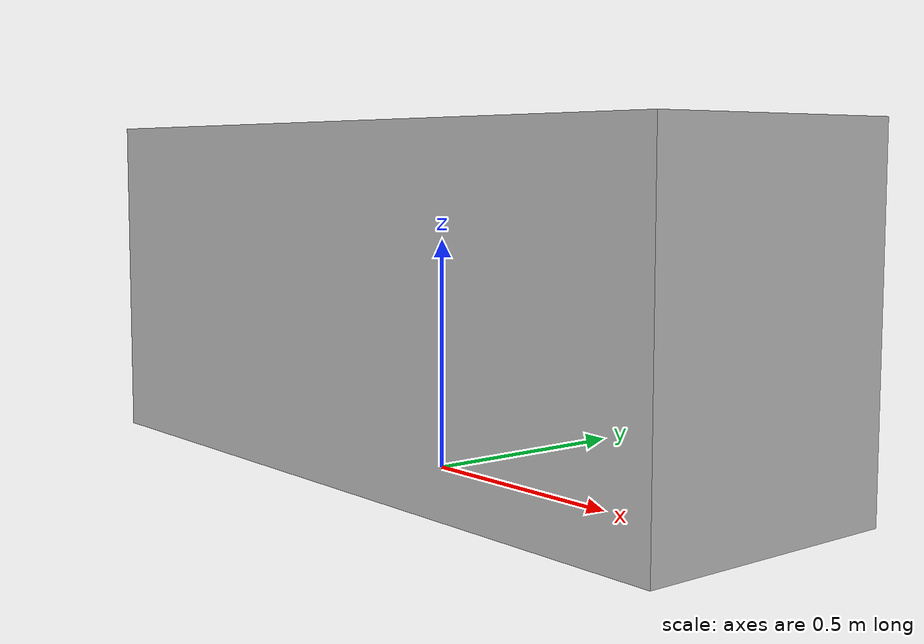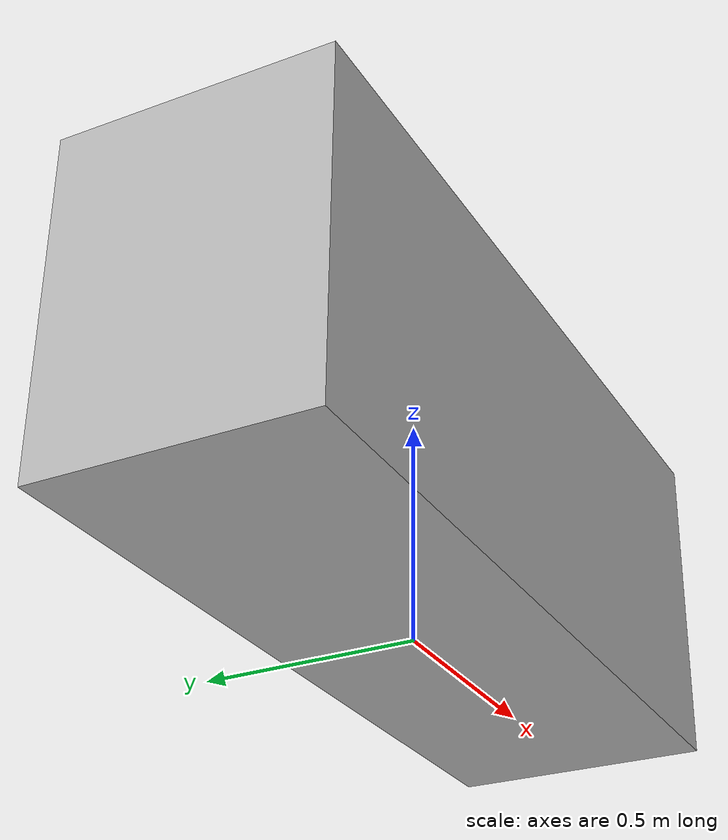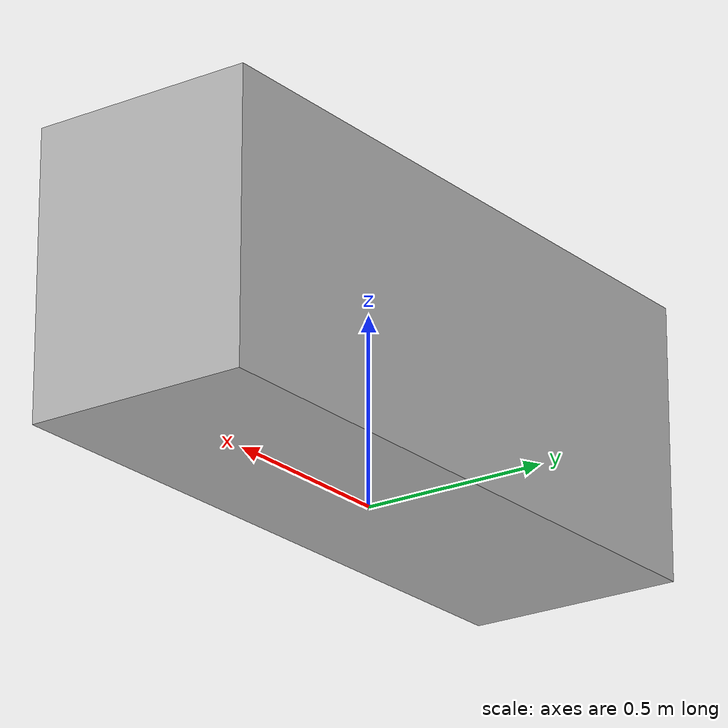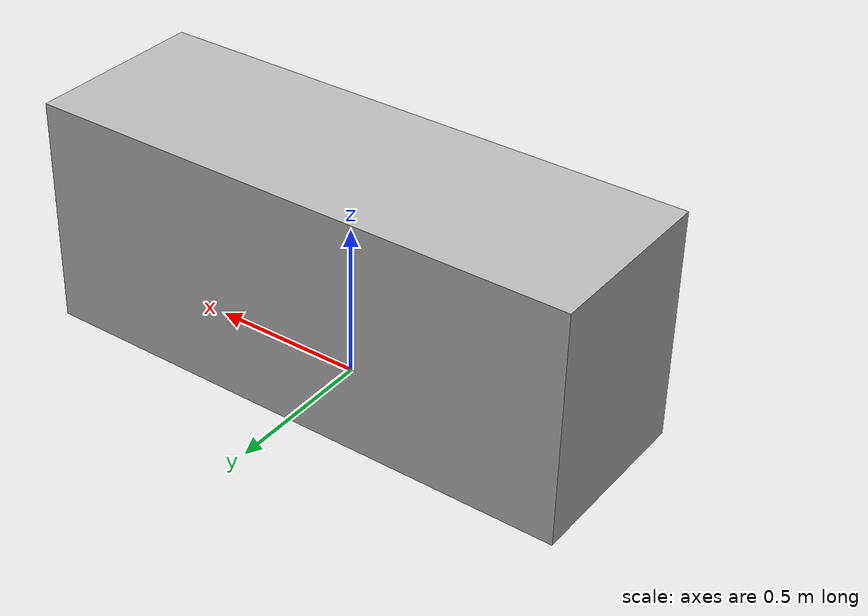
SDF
<?xml version="1.0" ?>
<sdf version='1.6'>
    <model name='Preparation_Table'>
        <static>true</static>
        <!-- Table -->
        <link name="table">
            <pose>0 0 0.375 0 0 0</pose>
            <collision name="visual">
                <geometry>
                    <box>
                        <size>1.8 0.6 0.75</size>
                    </box>
                </geometry>
            </collision>
            <visual name="visual">
                <geometry>
                    <box>
                        <size>1.8 0.6 0.75</size>
                    </box>
                </geometry>
                <material>
                    <script>
                        <uri>model://Preparation_Table/materials/scripts</uri>
                        <uri>model://Preparation_Table/materials/textures</uri>
                        <name>Table/Preparation_Table</name>
                    </script>
                </material>
            </visual>
        </link>
    </model>
</sdf>
